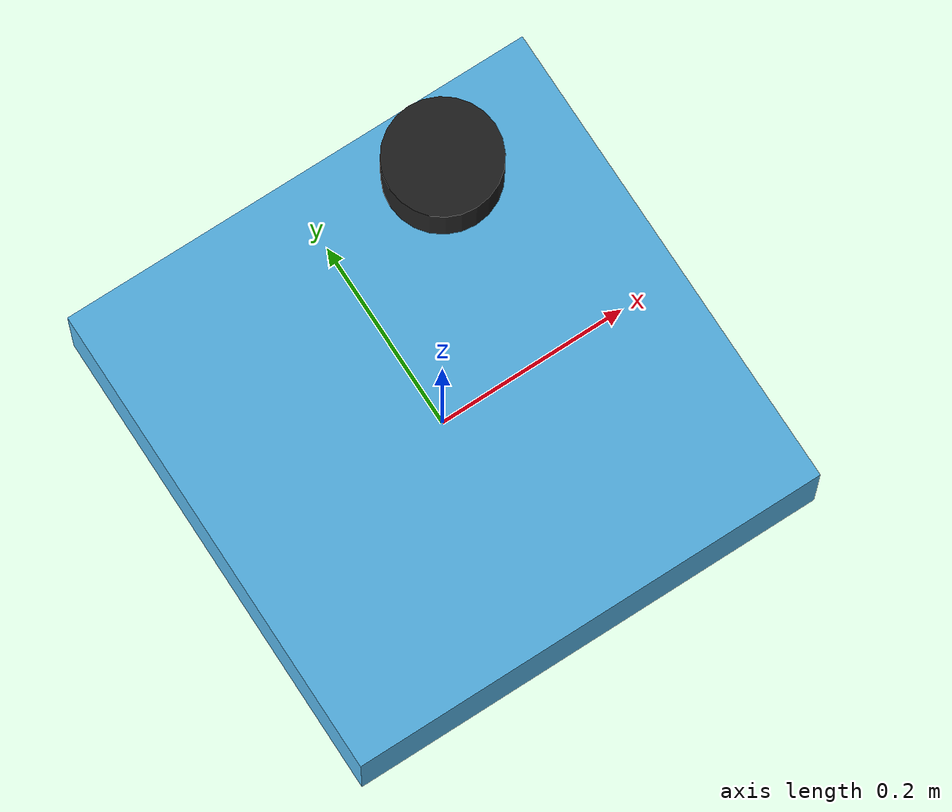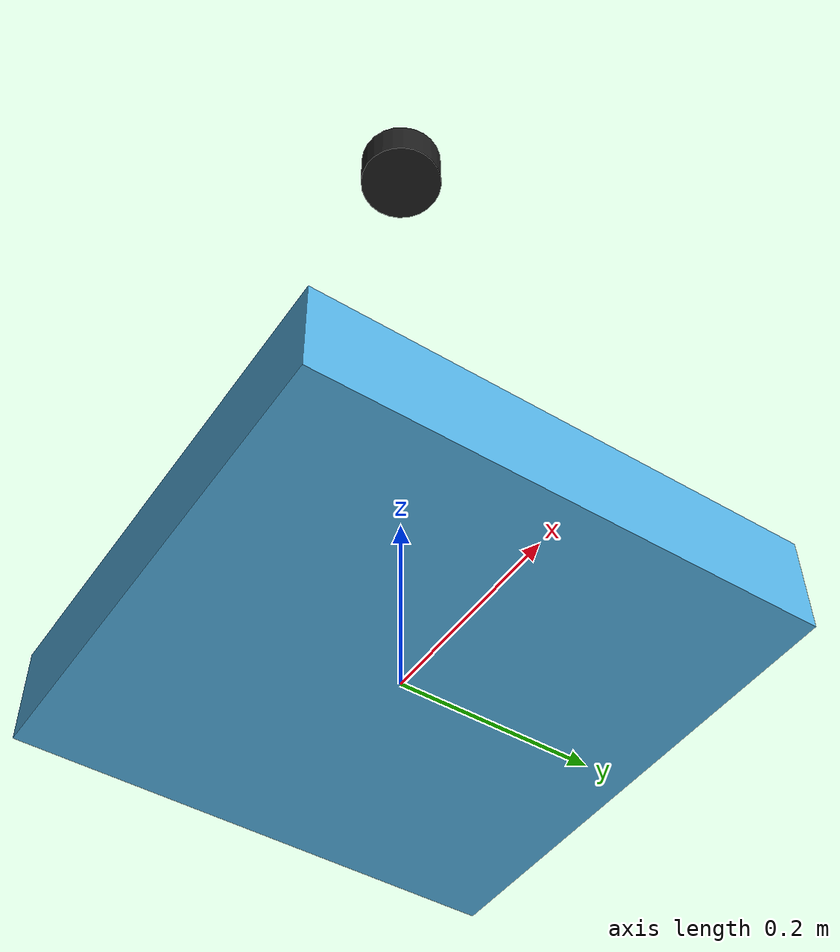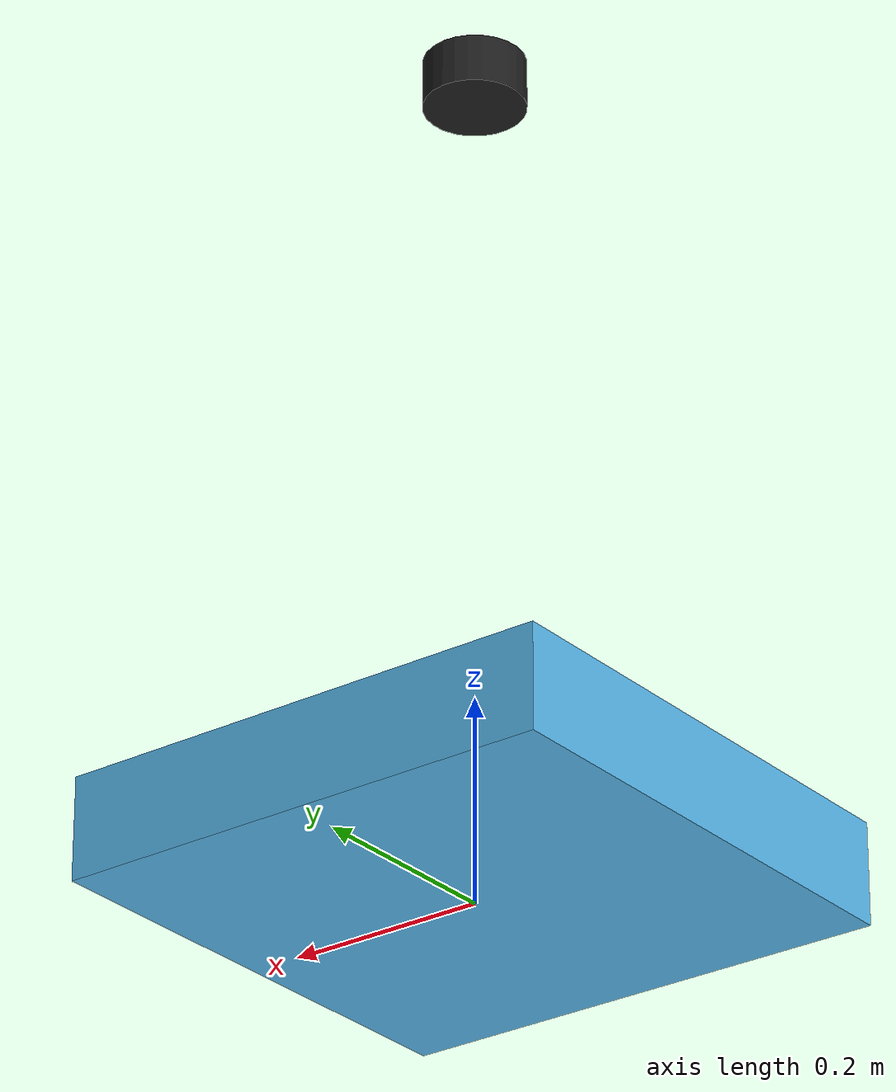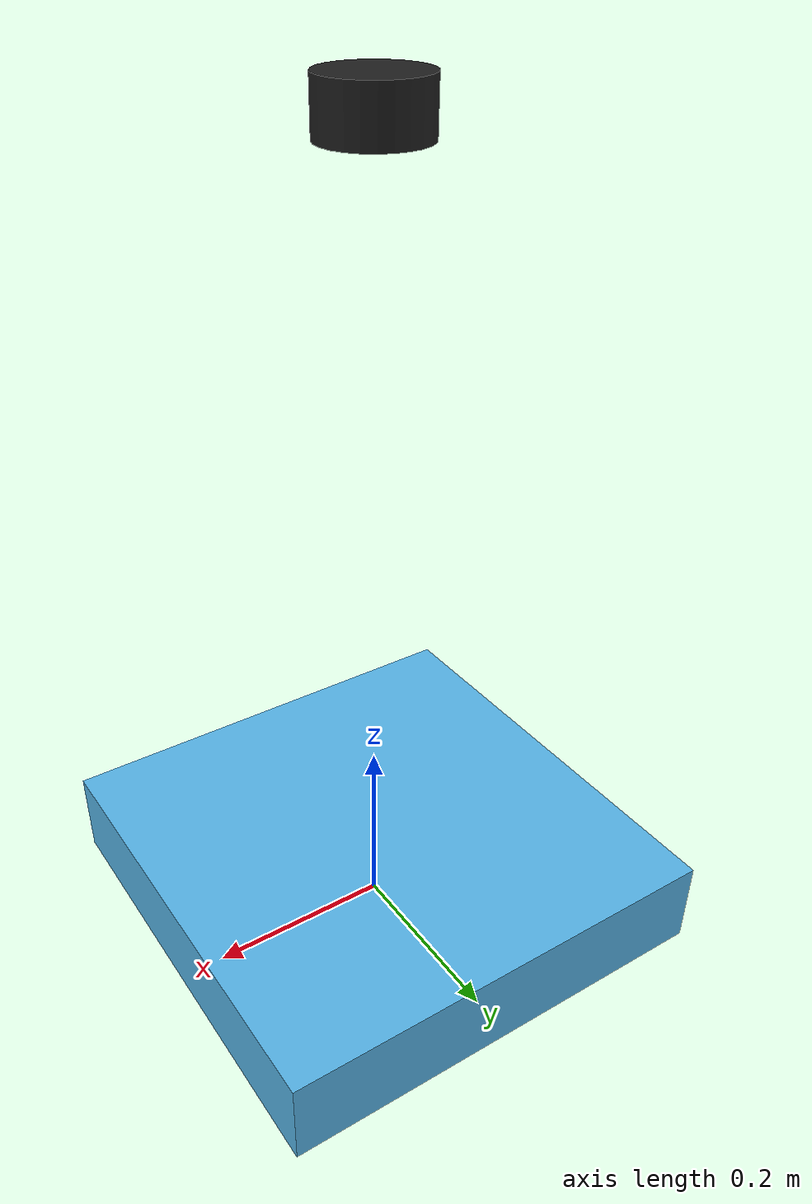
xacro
<?xml version="1.0"?>
<robot xmlns:xacro="http://www.ros.org/wiki/xacro" name="test_rplidar">

<xacro:property name="M_PI" value="3.14159"/>
<xacro:arg name="robot_namespace" default="/" />

  <!-- Base Footprint -->
  <link name="base_footprint" />

  <!-- Base Link-->
  <joint name="footprint" type="fixed" >
   <parent link="base_footprint" />
    <child link="base_link" />
    <origin xyz="0 0 0.05" rpy="0 0 0" />
  </joint>

  <link name="base_link" >
    <visual>
      <geometry>
        <box size="0.5 0.5 0.1" />
      </geometry>
    </visual>
    <collision>
      <geometry>
        <box size="0.5 0.5 0.1" />
      </geometry>
    </collision>
    <inertial>
      <origin xyz="0 0 0"/>
      <mass value="10"/>
      <inertia ixx="3.0" ixy="0.0" ixz="0.0"
               iyy="3.0" iyz="0.0"
               izz="3.0" />
    </inertial>
  </link>

      <joint name="rplidar_joint" type="fixed">
      <parent link="base_link"/>
      <child link="laser_link"/>
      <origin xyz="0 0 0.8" rpy="0 0 -3.14" />
      </joint>

  <!--sick_lms1xx camera -->
  <xacro:include filename="$(find gazebo_robot)/sensors/rplidar/urdf/rplidar.xacro"/>
   <xacro:rplidar prefix="laser" frame="laser" topic="scan" robot_namespace="$(arg robot_namespace)"/>

</robot>

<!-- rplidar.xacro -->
<robot xmlns:xacro="http://www.ros.org/wiki/xacro" name="laser">

	<xacro:macro name="rplidar" params="prefix:=laser frame:=laser topic:=scan robot_namespace=/ ">
		<link name="${prefix}_link">
			<inertial>
				<mass value="0.1" />
				<origin xyz="0 0 0" />
				<inertia ixx="0.01" ixy="0.0" ixz="0.0"
						 iyy="0.01" iyz="0.0"
						 izz="0.01" />
			</inertial>

			<visual>
				<origin xyz=" 0 0 0 " rpy="0 0 0" />
				<geometry>
					<cylinder length="0.05" radius="0.05"/>
				</geometry>
				<material name="black"/>
			</visual>

			<collision>
				<origin xyz="0.0 0.0 0.0" rpy="0 0 0" />
				<geometry>
					<cylinder length="0.06" radius="0.05"/>
				</geometry>
			</collision>
		</link>

	</xacro:macro>

</robot>
